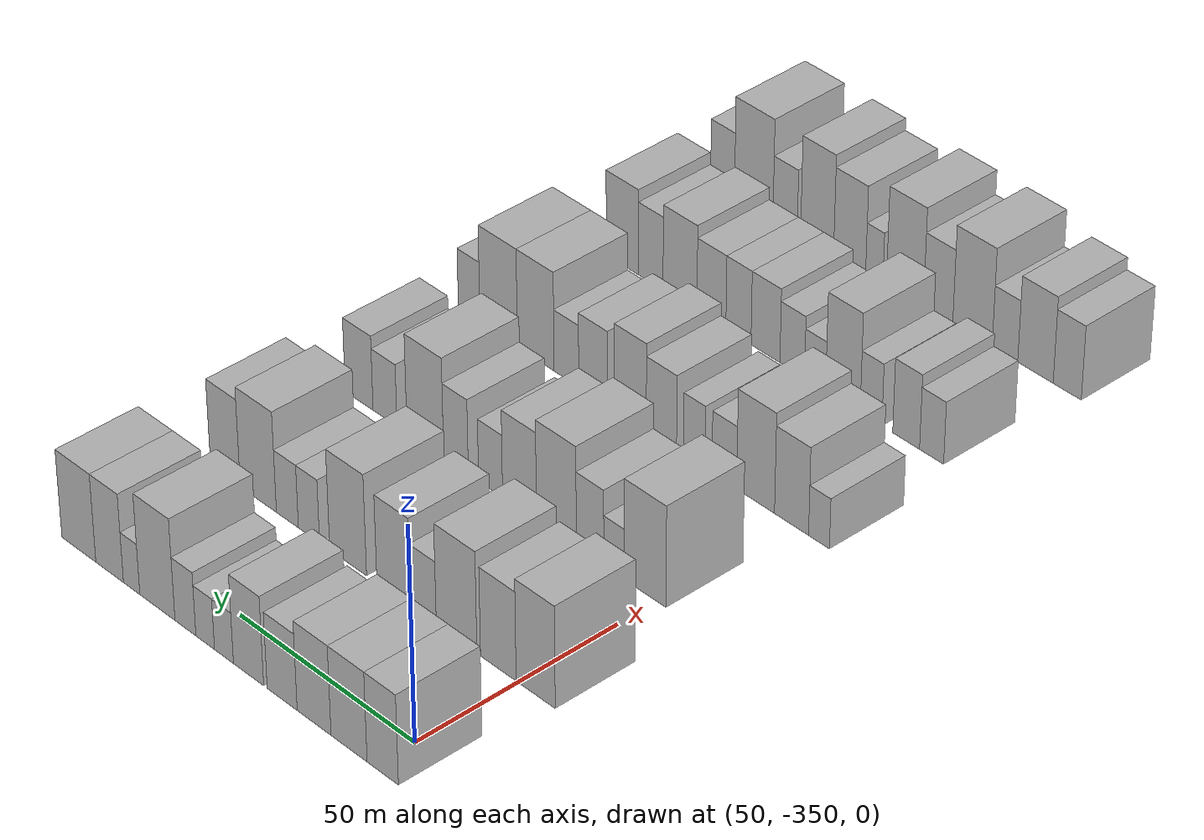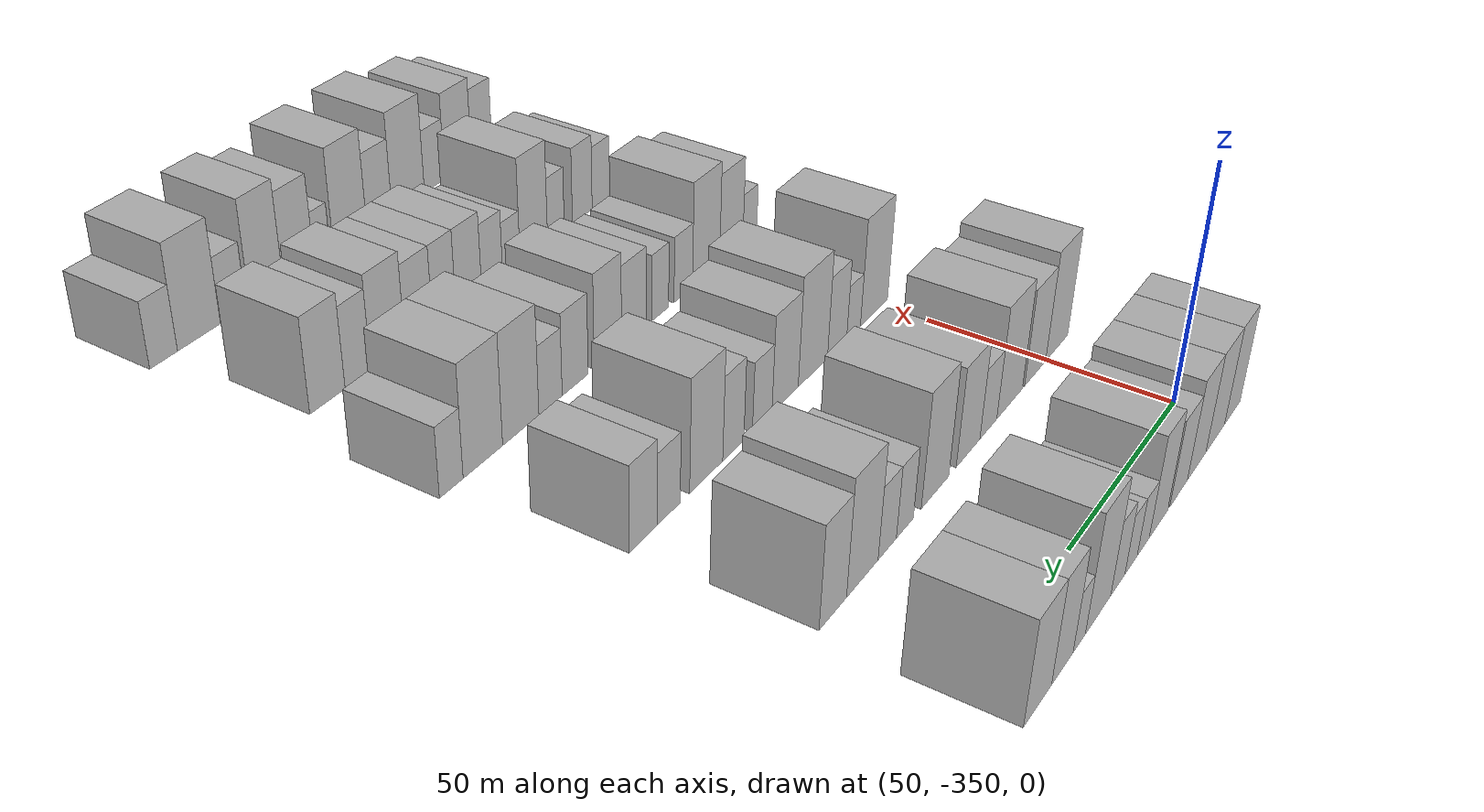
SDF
<sdf version="1.6">
 <world name="default">
  <model name="building_22">
   <static>1</static>
   <pose>50.0000 -352.5626 0 0.000000 0.000000 0.000000</pose>
   <link name="link">
    <pose>0 0 10.50 0 0 0</pose>
    <collision name="collision"><geometry><box><size>20.0000 8.6644 21.0000</size></box></geometry></collision>
    <visual name="visual">
     <cast_shadows>0</cast_shadows>
     <geometry><box><size>20.0000 8.6644 21.0000</size></box></geometry>
     <material>
      <script>
       <uri>model://HANNAS_wall/materials/scripts</uri>
       <uri>model://HANNAS_wall/materials/textures</uri>
       <name>vrc/HANNAS_wall</name>
      </script>
     </material>
    </visual>
   </link>
  </model>
  <model name="building_23">
   <static>1</static>
   <pose>50.0000 -343.1908 0 0.000000 0.000000 0.000000</pose>
   <link name="link">
    <pose>0 0 10.50 0 0 0</pose>
    <collision name="collision"><geometry><box><size>20.0000 10.0792 21.0000</size></box></geometry></collision>
    <visual name="visual">
     <cast_shadows>0</cast_shadows>
     <geometry><box><size>20.0000 10.0792 21.0000</size></box></geometry>
     <material>
      <script>
       <uri>model://HANNAS_wall/materials/scripts</uri>
       <uri>model://HANNAS_wall/materials/textures</uri>
       <name>vrc/HANNAS_wall</name>
      </script>
     </material>
    </visual>
   </link>
  </model>
  <model name="building_24">
   <static>1</static>
   <pose>50.0000 -333.3636 0 0.000000 0.000000 0.000000</pose>
   <link name="link">
    <pose>0 0 10.50 0 0 0</pose>
    <collision name="collision"><geometry><box><size>20.0000 9.5752 21.0000</size></box></geometry></collision>
    <visual name="visual">
     <cast_shadows>0</cast_shadows>
     <geometry><box><size>20.0000 9.5752 21.0000</size></box></geometry>
     <material>
      <script>
       <uri>model://HANNAS_wall/materials/scripts</uri>
       <uri>model://HANNAS_wall/materials/textures</uri>
       <name>vrc/HANNAS_wall</name>
      </script>
     </material>
    </visual>
   </link>
  </model>
  <model name="building_25">
   <static>1</static>
   <pose>50.0000 -324.2821 0 0.000000 0.000000 0.000000</pose>
   <link name="link">
    <pose>0 0 9.00 0 0 0</pose>
    <collision name="collision"><geometry><box><size>20.0000 8.5880 18.0000</size></box></geometry></collision>
    <visual name="visual">
     <cast_shadows>0</cast_shadows>
     <geometry><box><size>20.0000 8.5880 18.0000</size></box></geometry>
     <material>
      <script>
       <uri>model://HANNAS_wall/materials/scripts</uri>
       <uri>model://HANNAS_wall/materials/textures</uri>
       <name>vrc/HANNAS_wall</name>
      </script>
     </material>
    </visual>
   </link>
  </model>
  <model name="building_26">
   <static>1</static>
   <pose>50.0000 -314.6036 0 0.000000 0.000000 0.000000</pose>
   <link name="link">
    <pose>0 0 10.50 0 0 0</pose>
    <collision name="collision"><geometry><box><size>20.0000 8.7688 21.0000</size></box></geometry></collision>
    <visual name="visual">
     <cast_shadows>0</cast_shadows>
     <geometry><box><size>20.0000 8.7688 21.0000</size></box></geometry>
     <material>
      <script>
       <uri>model://HANNAS_wall/materials/scripts</uri>
       <uri>model://HANNAS_wall/materials/textures</uri>
       <name>vrc/HANNAS_wall</name>
      </script>
     </material>
    </visual>
   </link>
  </model>
  <model name="building_27">
   <static>1</static>
   <pose>50.0000 -307.4533 0 0.000000 0.000000 0.000000</pose>
   <link name="link">
    <pose>0 0 6.00 0 0 0</pose>
    <collision name="collision"><geometry><box><size>20.0000 5.5318 12.0000</size></box></geometry></collision>
    <visual name="visual">
     <cast_shadows>0</cast_shadows>
     <geometry><box><size>20.0000 5.5318 12.0000</size></box></geometry>
     <material>
      <script>
       <uri>model://HANNAS_wall/materials/scripts</uri>
       <uri>model://HANNAS_wall/materials/textures</uri>
       <name>vrc/HANNAS_wall</name>
      </script>
     </material>
    </visual>
   </link>
  </model>
  <model name="building_28">
   <static>1</static>
   <pose>50.0000 -301.9420 0 0.000000 0.000000 0.000000</pose>
   <link name="link">
    <pose>0 0 6.00 0 0 0</pose>
    <collision name="collision"><geometry><box><size>20.0000 5.4909 12.0000</size></box></geometry></collision>
    <visual name="visual">
     <cast_shadows>0</cast_shadows>
     <geometry><box><size>20.0000 5.4909 12.0000</size></box></geometry>
     <material>
      <script>
       <uri>model://HANNAS_wall/materials/scripts</uri>
       <uri>model://HANNAS_wall/materials/textures</uri>
       <name>vrc/HANNAS_wall</name>
      </script>
     </material>
    </visual>
   </link>
  </model>
  <model name="building_29">
   <static>1</static>
   <pose>50.0000 -296.1040 0 0.000000 0.000000 0.000000</pose>
   <link name="link">
    <pose>0 0 7.50 0 0 0</pose>
    <collision name="collision"><geometry><box><size>20.0000 6.1851 15.0000</size></box></geometry></collision>
    <visual name="visual">
     <cast_shadows>0</cast_shadows>
     <geometry><box><size>20.0000 6.1851 15.0000</size></box></geometry>
     <material>
      <script>
       <uri>model://HANNAS_wall/materials/scripts</uri>
       <uri>model://HANNAS_wall/materials/textures</uri>
       <name>vrc/HANNAS_wall</name>
      </script>
     </material>
    </visual>
   </link>
  </model>
  <model name="building_30">
   <static>1</static>
   <pose>50.0000 -287.7422 0 0.000000 0.000000 0.000000</pose>
   <link name="link">
    <pose>0 0 12.00 0 0 0</pose>
    <collision name="collision"><geometry><box><size>20.0000 10.5384 24.0000</size></box></geometry></collision>
    <visual name="visual">
     <cast_shadows>0</cast_shadows>
     <geometry><box><size>20.0000 10.5384 24.0000</size></box></geometry>
     <material>
      <script>
       <uri>model://HANNAS_wall/materials/scripts</uri>
       <uri>model://HANNAS_wall/materials/textures</uri>
       <name>vrc/HANNAS_wall</name>
      </script>
     </material>
    </visual>
   </link>
  </model>
  <model name="building_31">
   <static>1</static>
   <pose>50.0000 -280.0012 0 0.000000 0.000000 0.000000</pose>
   <link name="link">
    <pose>0 0 6.00 0 0 0</pose>
    <collision name="collision"><geometry><box><size>20.0000 4.9436 12.0000</size></box></geometry></collision>
    <visual name="visual">
     <cast_shadows>0</cast_shadows>
     <geometry><box><size>20.0000 4.9436 12.0000</size></box></geometry>
     <material>
      <script>
       <uri>model://HANNAS_wall/materials/scripts</uri>
       <uri>model://HANNAS_wall/materials/textures</uri>
       <name>vrc/HANNAS_wall</name>
      </script>
     </material>
    </visual>
   </link>
  </model>
  <model name="building_32">
   <static>1</static>
   <pose>50.0000 -273.3177 0 0.000000 0.000000 0.000000</pose>
   <link name="link">
    <pose>0 0 10.50 0 0 0</pose>
    <collision name="collision"><geometry><box><size>20.0000 8.4234 21.0000</size></box></geometry></collision>
    <visual name="visual">
     <cast_shadows>0</cast_shadows>
     <geometry><box><size>20.0000 8.4234 21.0000</size></box></geometry>
     <material>
      <script>
       <uri>model://HANNAS_wall/materials/scripts</uri>
       <uri>model://HANNAS_wall/materials/textures</uri>
       <name>vrc/HANNAS_wall</name>
      </script>
     </material>
    </visual>
   </link>
  </model>
  <model name="building_33">
   <static>1</static>
   <pose>50.0000 -263.8899 0 0.000000 0.000000 0.000000</pose>
   <link name="link">
    <pose>0 0 10.50 0 0 0</pose>
    <collision name="collision"><geometry><box><size>20.0000 10.4322 21.0000</size></box></geometry></collision>
    <visual name="visual">
     <cast_shadows>0</cast_shadows>
     <geometry><box><size>20.0000 10.4322 21.0000</size></box></geometry>
     <material>
      <script>
       <uri>model://HANNAS_wall/materials/scripts</uri>
       <uri>model://HANNAS_wall/materials/textures</uri>
       <name>vrc/HANNAS_wall</name>
      </script>
     </material>
    </visual>
   </link>
  </model>
  <model name="building_157">
   <static>1</static>
   <pose>85.0000 -354.8199 0 0.000000 0.000000 0.000000</pose>
   <link name="link">
    <pose>0 0 12.00 0 0 0</pose>
    <collision name="collision"><geometry><box><size>20.0000 10.7220 24.0000</size></box></geometry></collision>
    <visual name="visual">
     <cast_shadows>0</cast_shadows>
     <geometry><box><size>20.0000 10.7220 24.0000</size></box></geometry>
     <material>
      <script>
       <uri>model://HANNAS_wall/materials/scripts</uri>
       <uri>model://HANNAS_wall/materials/textures</uri>
       <name>vrc/HANNAS_wall</name>
      </script>
     </material>
    </visual>
   </link>
  </model>
  <model name="building_158">
   <static>1</static>
   <pose>85.0000 -344.5170 0 0.000000 0.000000 0.000000</pose>
   <link name="link">
    <pose>0 0 10.50 0 0 0</pose>
    <collision name="collision"><geometry><box><size>20.0000 9.8838 21.0000</size></box></geometry></collision>
    <visual name="visual">
     <cast_shadows>0</cast_shadows>
     <geometry><box><size>20.0000 9.8838 21.0000</size></box></geometry>
     <material>
      <script>
       <uri>model://HANNAS_wall/materials/scripts</uri>
       <uri>model://HANNAS_wall/materials/textures</uri>
       <name>vrc/HANNAS_wall</name>
      </script>
     </material>
    </visual>
   </link>
  </model>
  <model name="building_159">
   <static>1</static>
   <pose>85.0000 -332.8513 0 0.000000 0.000000 0.000000</pose>
   <link name="link">
    <pose>0 0 12.00 0 0 0</pose>
    <collision name="collision"><geometry><box><size>20.0000 11.4477 24.0000</size></box></geometry></collision>
    <visual name="visual">
     <cast_shadows>0</cast_shadows>
     <geometry><box><size>20.0000 11.4477 24.0000</size></box></geometry>
     <material>
      <script>
       <uri>model://HANNAS_wall/materials/scripts</uri>
       <uri>model://HANNAS_wall/materials/textures</uri>
       <name>vrc/HANNAS_wall</name>
      </script>
     </material>
    </visual>
   </link>
  </model>
  <model name="building_160">
   <static>1</static>
   <pose>85.0000 -323.4983 0 0.000000 0.000000 0.000000</pose>
   <link name="link">
    <pose>0 0 7.50 0 0 0</pose>
    <collision name="collision"><geometry><box><size>20.0000 7.2583 15.0000</size></box></geometry></collision>
    <visual name="visual">
     <cast_shadows>0</cast_shadows>
     <geometry><box><size>20.0000 7.2583 15.0000</size></box></geometry>
     <material>
      <script>
       <uri>model://HANNAS_wall/materials/scripts</uri>
       <uri>model://HANNAS_wall/materials/textures</uri>
       <name>vrc/HANNAS_wall</name>
      </script>
     </material>
    </visual>
   </link>
  </model>
  <model name="building_161">
   <static>1</static>
   <pose>85.0000 -314.9793 0 0.000000 0.000000 0.000000</pose>
   <link name="link">
    <pose>0 0 10.50 0 0 0</pose>
    <collision name="collision"><geometry><box><size>20.0000 9.7797 21.0000</size></box></geometry></collision>
    <visual name="visual">
     <cast_shadows>0</cast_shadows>
     <geometry><box><size>20.0000 9.7797 21.0000</size></box></geometry>
     <material>
      <script>
       <uri>model://HANNAS_wall/materials/scripts</uri>
       <uri>model://HANNAS_wall/materials/textures</uri>
       <name>vrc/HANNAS_wall</name>
      </script>
     </material>
    </visual>
   </link>
  </model>
  <model name="building_162">
   <static>1</static>
   <pose>85.0000 -301.7005 0 0.000000 0.000000 0.000000</pose>
   <link name="link">
    <pose>0 0 12.00 0 0 0</pose>
    <collision name="collision"><geometry><box><size>20.0000 10.7778 24.0000</size></box></geometry></collision>
    <visual name="visual">
     <cast_shadows>0</cast_shadows>
     <geometry><box><size>20.0000 10.7778 24.0000</size></box></geometry>
     <material>
      <script>
       <uri>model://HANNAS_wall/materials/scripts</uri>
       <uri>model://HANNAS_wall/materials/textures</uri>
       <name>vrc/HANNAS_wall</name>
      </script>
     </material>
    </visual>
   </link>
  </model>
  <model name="building_163">
   <static>1</static>
   <pose>85.0000 -290.1721 0 0.000000 0.000000 0.000000</pose>
   <link name="link">
    <pose>0 0 7.50 0 0 0</pose>
    <collision name="collision"><geometry><box><size>20.0000 6.2791 15.0000</size></box></geometry></collision>
    <visual name="visual">
     <cast_shadows>0</cast_shadows>
     <geometry><box><size>20.0000 6.2791 15.0000</size></box></geometry>
     <material>
      <script>
       <uri>model://HANNAS_wall/materials/scripts</uri>
       <uri>model://HANNAS_wall/materials/textures</uri>
       <name>vrc/HANNAS_wall</name>
      </script>
     </material>
    </visual>
   </link>
  </model>
  <model name="building_164">
   <static>1</static>
   <pose>85.0000 -283.7455 0 0.000000 0.000000 0.000000</pose>
   <link name="link">
    <pose>0 0 7.50 0 0 0</pose>
    <collision name="collision"><geometry><box><size>20.0000 6.5740 15.0000</size></box></geometry></collision>
    <visual name="visual">
     <cast_shadows>0</cast_shadows>
     <geometry><box><size>20.0000 6.5740 15.0000</size></box></geometry>
     <material>
      <script>
       <uri>model://HANNAS_wall/materials/scripts</uri>
       <uri>model://HANNAS_wall/materials/textures</uri>
       <name>vrc/HANNAS_wall</name>
      </script>
     </material>
    </visual>
   </link>
  </model>
  <model name="building_165">
   <static>1</static>
   <pose>85.0000 -274.9984 0 0.000000 0.000000 0.000000</pose>
   <link name="link">
    <pose>0 0 12.00 0 0 0</pose>
    <collision name="collision"><geometry><box><size>20.0000 10.9202 24.0000</size></box></geometry></collision>
    <visual name="visual">
     <cast_shadows>0</cast_shadows>
     <geometry><box><size>20.0000 10.9202 24.0000</size></box></geometry>
     <material>
      <script>
       <uri>model://HANNAS_wall/materials/scripts</uri>
       <uri>model://HANNAS_wall/materials/textures</uri>
       <name>vrc/HANNAS_wall</name>
      </script>
     </material>
    </visual>
   </link>
  </model>
  <model name="building_166">
   <static>1</static>
   <pose>85.0000 -265.0072 0 0.000000 0.000000 0.000000</pose>
   <link name="link">
    <pose>0 0 10.50 0 0 0</pose>
    <collision name="collision"><geometry><box><size>20.0000 9.0621 21.0000</size></box></geometry></collision>
    <visual name="visual">
     <cast_shadows>0</cast_shadows>
     <geometry><box><size>20.0000 9.0621 21.0000</size></box></geometry>
     <material>
      <script>
       <uri>model://HANNAS_wall/materials/scripts</uri>
       <uri>model://HANNAS_wall/materials/textures</uri>
       <name>vrc/HANNAS_wall</name>
      </script>
     </material>
    </visual>
   </link>
  </model>
  <model name="building_276">
   <static>1</static>
   <pose>120.0000 -346.6908 0 0.000000 0.000000 0.000000</pose>
   <link name="link">
    <pose>0 0 12.00 0 0 0</pose>
    <collision name="collision"><geometry><box><size>20.0000 11.5114 24.0000</size></box></geometry></collision>
    <visual name="visual">
     <cast_shadows>0</cast_shadows>
     <geometry><box><size>20.0000 11.5114 24.0000</size></box></geometry>
     <material>
      <script>
       <uri>model://HANNAS_wall/materials/scripts</uri>
       <uri>model://HANNAS_wall/materials/textures</uri>
       <name>vrc/HANNAS_wall</name>
      </script>
     </material>
    </visual>
   </link>
  </model>
  <model name="building_277">
   <static>1</static>
   <pose>120.0000 -338.0852 0 0.000000 0.000000 0.000000</pose>
   <link name="link">
    <pose>0 0 6.00 0 0 0</pose>
    <collision name="collision"><geometry><box><size>20.0000 5.6998 12.0000</size></box></geometry></collision>
    <visual name="visual">
     <cast_shadows>0</cast_shadows>
     <geometry><box><size>20.0000 5.6998 12.0000</size></box></geometry>
     <material>
      <script>
       <uri>model://HANNAS_wall/materials/scripts</uri>
       <uri>model://HANNAS_wall/materials/textures</uri>
       <name>vrc/HANNAS_wall</name>
      </script>
     </material>
    </visual>
   </link>
  </model>
  <model name="building_278">
   <static>1</static>
   <pose>120.0000 -331.3809 0 0.000000 0.000000 0.000000</pose>
   <link name="link">
    <pose>0 0 9.00 0 0 0</pose>
    <collision name="collision"><geometry><box><size>20.0000 7.7088 18.0000</size></box></geometry></collision>
    <visual name="visual">
     <cast_shadows>0</cast_shadows>
     <geometry><box><size>20.0000 7.7088 18.0000</size></box></geometry>
     <material>
      <script>
       <uri>model://HANNAS_wall/materials/scripts</uri>
       <uri>model://HANNAS_wall/materials/textures</uri>
       <name>vrc/HANNAS_wall</name>
      </script>
     </material>
    </visual>
   </link>
  </model>
  <model name="building_279">
   <static>1</static>
   <pose>120.0000 -321.8666 0 0.000000 0.000000 0.000000</pose>
   <link name="link">
    <pose>0 0 12.00 0 0 0</pose>
    <collision name="collision"><geometry><box><size>20.0000 11.3198 24.0000</size></box></geometry></collision>
    <visual name="visual">
     <cast_shadows>0</cast_shadows>
     <geometry><box><size>20.0000 11.3198 24.0000</size></box></geometry>
     <material>
      <script>
       <uri>model://HANNAS_wall/materials/scripts</uri>
       <uri>model://HANNAS_wall/materials/textures</uri>
       <name>vrc/HANNAS_wall</name>
      </script>
     </material>
    </visual>
   </link>
  </model>
  <model name="building_280">
   <static>1</static>
   <pose>120.0000 -311.3226 0 0.000000 0.000000 0.000000</pose>
   <link name="link">
    <pose>0 0 10.50 0 0 0</pose>
    <collision name="collision"><geometry><box><size>20.0000 9.7681 21.0000</size></box></geometry></collision>
    <visual name="visual">
     <cast_shadows>0</cast_shadows>
     <geometry><box><size>20.0000 9.7681 21.0000</size></box></geometry>
     <material>
      <script>
       <uri>model://HANNAS_wall/materials/scripts</uri>
       <uri>model://HANNAS_wall/materials/textures</uri>
       <name>vrc/HANNAS_wall</name>
      </script>
     </material>
    </visual>
   </link>
  </model>
  <model name="building_281">
   <static>1</static>
   <pose>120.0000 -302.9514 0 0.000000 0.000000 0.000000</pose>
   <link name="link">
    <pose>0 0 7.50 0 0 0</pose>
    <collision name="collision"><geometry><box><size>20.0000 6.9742 15.0000</size></box></geometry></collision>
    <visual name="visual">
     <cast_shadows>0</cast_shadows>
     <geometry><box><size>20.0000 6.9742 15.0000</size></box></geometry>
     <material>
      <script>
       <uri>model://HANNAS_wall/materials/scripts</uri>
       <uri>model://HANNAS_wall/materials/textures</uri>
       <name>vrc/HANNAS_wall</name>
      </script>
     </material>
    </visual>
   </link>
  </model>
  <model name="building_282">
   <static>1</static>
   <pose>120.0000 -292.8397 0 0.000000 0.000000 0.000000</pose>
   <link name="link">
    <pose>0 0 9.00 0 0 0</pose>
    <collision name="collision"><geometry><box><size>20.0000 7.2493 18.0000</size></box></geometry></collision>
    <visual name="visual">
     <cast_shadows>0</cast_shadows>
     <geometry><box><size>20.0000 7.2493 18.0000</size></box></geometry>
     <material>
      <script>
       <uri>model://HANNAS_wall/materials/scripts</uri>
       <uri>model://HANNAS_wall/materials/textures</uri>
       <name>vrc/HANNAS_wall</name>
      </script>
     </material>
    </visual>
   </link>
  </model>
  <model name="building_283">
   <static>1</static>
   <pose>120.0000 -283.7536 0 0.000000 0.000000 0.000000</pose>
   <link name="link">
    <pose>0 0 12.00 0 0 0</pose>
    <collision name="collision"><geometry><box><size>20.0000 10.9228 24.0000</size></box></geometry></collision>
    <visual name="visual">
     <cast_shadows>0</cast_shadows>
     <geometry><box><size>20.0000 10.9228 24.0000</size></box></geometry>
     <material>
      <script>
       <uri>model://HANNAS_wall/materials/scripts</uri>
       <uri>model://HANNAS_wall/materials/textures</uri>
       <name>vrc/HANNAS_wall</name>
      </script>
     </material>
    </visual>
   </link>
  </model>
  <model name="building_284">
   <static>1</static>
   <pose>120.0000 -271.6797 0 0.000000 0.000000 0.000000</pose>
   <link name="link">
    <pose>0 0 7.50 0 0 0</pose>
    <collision name="collision"><geometry><box><size>20.0000 7.2249 15.0000</size></box></geometry></collision>
    <visual name="visual">
     <cast_shadows>0</cast_shadows>
     <geometry><box><size>20.0000 7.2249 15.0000</size></box></geometry>
     <material>
      <script>
       <uri>model://HANNAS_wall/materials/scripts</uri>
       <uri>model://HANNAS_wall/materials/textures</uri>
       <name>vrc/HANNAS_wall</name>
      </script>
     </material>
    </visual>
   </link>
  </model>
  <model name="building_285">
   <static>1</static>
   <pose>120.0000 -263.8373 0 0.000000 0.000000 0.000000</pose>
   <link name="link">
    <pose>0 0 9.00 0 0 0</pose>
    <collision name="collision"><geometry><box><size>20.0000 8.4598 18.0000</size></box></geometry></collision>
    <visual name="visual">
     <cast_shadows>0</cast_shadows>
     <geometry><box><size>20.0000 8.4598 18.0000</size></box></geometry>
     <material>
      <script>
       <uri>model://HANNAS_wall/materials/scripts</uri>
       <uri>model://HANNAS_wall/materials/textures</uri>
       <name>vrc/HANNAS_wall</name>
      </script>
     </material>
    </visual>
   </link>
  </model>
  <model name="building_405">
   <static>1</static>
   <pose>155.0000 -357.7529 0 0.000000 0.000000 0.000000</pose>
   <link name="link">
    <pose>0 0 6.00 0 0 0</pose>
    <collision name="collision"><geometry><box><size>20.0000 5.6784 12.0000</size></box></geometry></collision>
    <visual name="visual">
     <cast_shadows>0</cast_shadows>
     <geometry><box><size>20.0000 5.6784 12.0000</size></box></geometry>
     <material>
      <script>
       <uri>model://HANNAS_wall/materials/scripts</uri>
       <uri>model://HANNAS_wall/materials/textures</uri>
       <name>vrc/HANNAS_wall</name>
      </script>
     </material>
    </visual>
   </link>
  </model>
  <model name="building_406">
   <static>1</static>
   <pose>155.0000 -350.2532 0 0.000000 0.000000 0.000000</pose>
   <link name="link">
    <pose>0 0 10.50 0 0 0</pose>
    <collision name="collision"><geometry><box><size>20.0000 9.3210 21.0000</size></box></geometry></collision>
    <visual name="visual">
     <cast_shadows>0</cast_shadows>
     <geometry><box><size>20.0000 9.3210 21.0000</size></box></geometry>
     <material>
      <script>
       <uri>model://HANNAS_wall/materials/scripts</uri>
       <uri>model://HANNAS_wall/materials/textures</uri>
       <name>vrc/HANNAS_wall</name>
      </script>
     </material>
    </visual>
   </link>
  </model>
  <model name="building_407">
   <static>1</static>
   <pose>155.0000 -340.3426 0 0.000000 0.000000 0.000000</pose>
   <link name="link">
    <pose>0 0 12.00 0 0 0</pose>
    <collision name="collision"><geometry><box><size>20.0000 10.5003 24.0000</size></box></geometry></collision>
    <visual name="visual">
     <cast_shadows>0</cast_shadows>
     <geometry><box><size>20.0000 10.5003 24.0000</size></box></geometry>
     <material>
      <script>
       <uri>model://HANNAS_wall/materials/scripts</uri>
       <uri>model://HANNAS_wall/materials/textures</uri>
       <name>vrc/HANNAS_wall</name>
      </script>
     </material>
    </visual>
   </link>
  </model>
  <model name="building_408">
   <static>1</static>
   <pose>155.0000 -331.6388 0 0.000000 0.000000 0.000000</pose>
   <link name="link">
    <pose>0 0 7.50 0 0 0</pose>
    <collision name="collision"><geometry><box><size>20.0000 6.9074 15.0000</size></box></geometry></collision>
    <visual name="visual">
     <cast_shadows>0</cast_shadows>
     <geometry><box><size>20.0000 6.9074 15.0000</size></box></geometry>
     <material>
      <script>
       <uri>model://HANNAS_wall/materials/scripts</uri>
       <uri>model://HANNAS_wall/materials/textures</uri>
       <name>vrc/HANNAS_wall</name>
      </script>
     </material>
    </visual>
   </link>
  </model>
  <model name="building_409">
   <static>1</static>
   <pose>155.0000 -323.1669 0 0.000000 0.000000 0.000000</pose>
   <link name="link">
    <pose>0 0 7.50 0 0 0</pose>
    <collision name="collision"><geometry><box><size>20.0000 6.0364 15.0000</size></box></geometry></collision>
    <visual name="visual">
     <cast_shadows>0</cast_shadows>
     <geometry><box><size>20.0000 6.0364 15.0000</size></box></geometry>
     <material>
      <script>
       <uri>model://HANNAS_wall/materials/scripts</uri>
       <uri>model://HANNAS_wall/materials/textures</uri>
       <name>vrc/HANNAS_wall</name>
      </script>
     </material>
    </visual>
   </link>
  </model>
  <model name="building_410">
   <static>1</static>
   <pose>155.0000 -313.8187 0 0.000000 0.000000 0.000000</pose>
   <link name="link">
    <pose>0 0 9.00 0 0 0</pose>
    <collision name="collision"><geometry><box><size>20.0000 8.6600 18.0000</size></box></geometry></collision>
    <visual name="visual">
     <cast_shadows>0</cast_shadows>
     <geometry><box><size>20.0000 8.6600 18.0000</size></box></geometry>
     <material>
      <script>
       <uri>model://HANNAS_wall/materials/scripts</uri>
       <uri>model://HANNAS_wall/materials/textures</uri>
       <name>vrc/HANNAS_wall</name>
      </script>
     </material>
    </visual>
   </link>
  </model>
  <model name="building_411">
   <static>1</static>
   <pose>155.0000 -304.8774 0 0.000000 0.000000 0.000000</pose>
   <link name="link">
    <pose>0 0 10.50 0 0 0</pose>
    <collision name="collision"><geometry><box><size>20.0000 9.2226 21.0000</size></box></geometry></collision>
    <visual name="visual">
     <cast_shadows>0</cast_shadows>
     <geometry><box><size>20.0000 9.2226 21.0000</size></box></geometry>
     <material>
      <script>
       <uri>model://HANNAS_wall/materials/scripts</uri>
       <uri>model://HANNAS_wall/materials/textures</uri>
       <name>vrc/HANNAS_wall</name>
      </script>
     </material>
    </visual>
   </link>
  </model>
  <model name="building_412">
   <static>1</static>
   <pose>155.0000 -294.0614 0 0.000000 0.000000 0.000000</pose>
   <link name="link">
    <pose>0 0 9.00 0 0 0</pose>
    <collision name="collision"><geometry><box><size>20.0000 8.4094 18.0000</size></box></geometry></collision>
    <visual name="visual">
     <cast_shadows>0</cast_shadows>
     <geometry><box><size>20.0000 8.4094 18.0000</size></box></geometry>
     <material>
      <script>
       <uri>model://HANNAS_wall/materials/scripts</uri>
       <uri>model://HANNAS_wall/materials/textures</uri>
       <name>vrc/HANNAS_wall</name>
      </script>
     </material>
    </visual>
   </link>
  </model>
  <model name="building_413">
   <static>1</static>
   <pose>155.0000 -286.2092 0 0.000000 0.000000 0.000000</pose>
   <link name="link">
    <pose>0 0 7.50 0 0 0</pose>
    <collision name="collision"><geometry><box><size>20.0000 7.2950 15.0000</size></box></geometry></collision>
    <visual name="visual">
     <cast_shadows>0</cast_shadows>
     <geometry><box><size>20.0000 7.2950 15.0000</size></box></geometry>
     <material>
      <script>
       <uri>model://HANNAS_wall/materials/scripts</uri>
       <uri>model://HANNAS_wall/materials/textures</uri>
       <name>vrc/HANNAS_wall</name>
      </script>
     </material>
    </visual>
   </link>
  </model>
  <model name="building_414">
   <static>1</static>
   <pose>155.0000 -277.0945 0 0.000000 0.000000 0.000000</pose>
   <link name="link">
    <pose>0 0 12.00 0 0 0</pose>
    <collision name="collision"><geometry><box><size>20.0000 10.9344 24.0000</size></box></geometry></collision>
    <visual name="visual">
     <cast_shadows>0</cast_shadows>
     <geometry><box><size>20.0000 10.9344 24.0000</size></box></geometry>
     <material>
      <script>
       <uri>model://HANNAS_wall/materials/scripts</uri>
       <uri>model://HANNAS_wall/materials/textures</uri>
       <name>vrc/HANNAS_wall</name>
      </script>
     </material>
    </visual>
   </link>
  </model>
  <model name="building_415">
   <static>1</static>
   <pose>155.0000 -265.9633 0 0.000000 0.000000 0.000000</pose>
   <link name="link">
    <pose>0 0 12.00 0 0 0</pose>
    <collision name="collision"><geometry><box><size>20.0000 11.3281 24.0000</size></box></geometry></collision>
    <visual name="visual">
     <cast_shadows>0</cast_shadows>
     <geometry><box><size>20.0000 11.3281 24.0000</size></box></geometry>
     <material>
      <script>
       <uri>model://HANNAS_wall/materials/scripts</uri>
       <uri>model://HANNAS_wall/materials/textures</uri>
       <name>vrc/HANNAS_wall</name>
      </script>
     </material>
    </visual>
   </link>
  </model>
  <model name="building_416">
   <static>1</static>
   <pose>155.0000 -257.0076 0 0.000000 0.000000 0.000000</pose>
   <link name="link">
    <pose>0 0 7.50 0 0 0</pose>
    <collision name="collision"><geometry><box><size>20.0000 6.5833 15.0000</size></box></geometry></collision>
    <visual name="visual">
     <cast_shadows>0</cast_shadows>
     <geometry><box><size>20.0000 6.5833 15.0000</size></box></geometry>
     <material>
      <script>
       <uri>model://HANNAS_wall/materials/scripts</uri>
       <uri>model://HANNAS_wall/materials/textures</uri>
       <name>vrc/HANNAS_wall</name>
      </script>
     </material>
    </visual>
   </link>
  </model>
  <model name="building_538">
   <static>1</static>
   <pose>190.0000 -353.4300 0 0.000000 0.000000 0.000000</pose>
   <link name="link">
    <pose>0 0 7.50 0 0 0</pose>
    <collision name="collision"><geometry><box><size>20.0000 6.5559 15.0000</size></box></geometry></collision>
    <visual name="visual">
     <cast_shadows>0</cast_shadows>
     <geometry><box><size>20.0000 6.5559 15.0000</size></box></geometry>
     <material>
      <script>
       <uri>model://HANNAS_wall/materials/scripts</uri>
       <uri>model://HANNAS_wall/materials/textures</uri>
       <name>vrc/HANNAS_wall</name>
      </script>
     </material>
    </visual>
   </link>
  </model>
  <model name="building_539">
   <static>1</static>
   <pose>190.0000 -346.4655 0 0.000000 0.000000 0.000000</pose>
   <link name="link">
    <pose>0 0 9.00 0 0 0</pose>
    <collision name="collision"><geometry><box><size>20.0000 7.3732 18.0000</size></box></geometry></collision>
    <visual name="visual">
     <cast_shadows>0</cast_shadows>
     <geometry><box><size>20.0000 7.3732 18.0000</size></box></geometry>
     <material>
      <script>
       <uri>model://HANNAS_wall/materials/scripts</uri>
       <uri>model://HANNAS_wall/materials/textures</uri>
       <name>vrc/HANNAS_wall</name>
      </script>
     </material>
    </visual>
   </link>
  </model>
  <model name="building_540">
   <static>1</static>
   <pose>190.0000 -336.7587 0 0.000000 0.000000 0.000000</pose>
   <link name="link">
    <pose>0 0 7.50 0 0 0</pose>
    <collision name="collision"><geometry><box><size>20.0000 6.0404 15.0000</size></box></geometry></collision>
    <visual name="visual">
     <cast_shadows>0</cast_shadows>
     <geometry><box><size>20.0000 6.0404 15.0000</size></box></geometry>
     <material>
      <script>
       <uri>model://HANNAS_wall/materials/scripts</uri>
       <uri>model://HANNAS_wall/materials/textures</uri>
       <name>vrc/HANNAS_wall</name>
      </script>
     </material>
    </visual>
   </link>
  </model>
  <model name="building_541">
   <static>1</static>
   <pose>190.0000 -328.8917 0 0.000000 0.000000 0.000000</pose>
   <link name="link">
    <pose>0 0 12.00 0 0 0</pose>
    <collision name="collision"><geometry><box><size>20.0000 9.6937 24.0000</size></box></geometry></collision>
    <visual name="visual">
     <cast_shadows>0</cast_shadows>
     <geometry><box><size>20.0000 9.6937 24.0000</size></box></geometry>
     <material>
      <script>
       <uri>model://HANNAS_wall/materials/scripts</uri>
       <uri>model://HANNAS_wall/materials/textures</uri>
       <name>vrc/HANNAS_wall</name>
      </script>
     </material>
    </visual>
   </link>
  </model>
  <model name="building_542">
   <static>1</static>
   <pose>190.0000 -321.0667 0 0.000000 0.000000 0.000000</pose>
   <link name="link">
    <pose>0 0 6.00 0 0 0</pose>
    <collision name="collision"><geometry><box><size>20.0000 5.9564 12.0000</size></box></geometry></collision>
    <visual name="visual">
     <cast_shadows>0</cast_shadows>
     <geometry><box><size>20.0000 5.9564 12.0000</size></box></geometry>
     <material>
      <script>
       <uri>model://HANNAS_wall/materials/scripts</uri>
       <uri>model://HANNAS_wall/materials/textures</uri>
       <name>vrc/HANNAS_wall</name>
      </script>
     </material>
    </visual>
   </link>
  </model>
  <model name="building_543">
   <static>1</static>
   <pose>190.0000 -314.5782 0 0.000000 0.000000 0.000000</pose>
   <link name="link">
    <pose>0 0 7.50 0 0 0</pose>
    <collision name="collision"><geometry><box><size>20.0000 7.0206 15.0000</size></box></geometry></collision>
    <visual name="visual">
     <cast_shadows>0</cast_shadows>
     <geometry><box><size>20.0000 7.0206 15.0000</size></box></geometry>
     <material>
      <script>
       <uri>model://HANNAS_wall/materials/scripts</uri>
       <uri>model://HANNAS_wall/materials/textures</uri>
       <name>vrc/HANNAS_wall</name>
      </script>
     </material>
    </visual>
   </link>
  </model>
  <model name="building_544">
   <static>1</static>
   <pose>190.0000 -306.9032 0 0.000000 0.000000 0.000000</pose>
   <link name="link">
    <pose>0 0 9.00 0 0 0</pose>
    <collision name="collision"><geometry><box><size>20.0000 8.3295 18.0000</size></box></geometry></collision>
    <visual name="visual">
     <cast_shadows>0</cast_shadows>
     <geometry><box><size>20.0000 8.3295 18.0000</size></box></geometry>
     <material>
      <script>
       <uri>model://HANNAS_wall/materials/scripts</uri>
       <uri>model://HANNAS_wall/materials/textures</uri>
       <name>vrc/HANNAS_wall</name>
      </script>
     </material>
    </visual>
   </link>
  </model>
  <model name="building_545">
   <static>1</static>
   <pose>190.0000 -299.0948 0 0.000000 0.000000 0.000000</pose>
   <link name="link">
    <pose>0 0 9.00 0 0 0</pose>
    <collision name="collision"><geometry><box><size>20.0000 7.2873 18.0000</size></box></geometry></collision>
    <visual name="visual">
     <cast_shadows>0</cast_shadows>
     <geometry><box><size>20.0000 7.2873 18.0000</size></box></geometry>
     <material>
      <script>
       <uri>model://HANNAS_wall/materials/scripts</uri>
       <uri>model://HANNAS_wall/materials/textures</uri>
       <name>vrc/HANNAS_wall</name>
      </script>
     </material>
    </visual>
   </link>
  </model>
  <model name="building_546">
   <static>1</static>
   <pose>190.0000 -291.2149 0 0.000000 0.000000 0.000000</pose>
   <link name="link">
    <pose>0 0 9.00 0 0 0</pose>
    <collision name="collision"><geometry><box><size>20.0000 8.4725 18.0000</size></box></geometry></collision>
    <visual name="visual">
     <cast_shadows>0</cast_shadows>
     <geometry><box><size>20.0000 8.4725 18.0000</size></box></geometry>
     <material>
      <script>
       <uri>model://HANNAS_wall/materials/scripts</uri>
       <uri>model://HANNAS_wall/materials/textures</uri>
       <name>vrc/HANNAS_wall</name>
      </script>
     </material>
    </visual>
   </link>
  </model>
  <model name="building_547">
   <static>1</static>
   <pose>190.0000 -281.9600 0 0.000000 0.000000 0.000000</pose>
   <link name="link">
    <pose>0 0 10.50 0 0 0</pose>
    <collision name="collision"><geometry><box><size>20.0000 10.0372 21.0000</size></box></geometry></collision>
    <visual name="visual">
     <cast_shadows>0</cast_shadows>
     <geometry><box><size>20.0000 10.0372 21.0000</size></box></geometry>
     <material>
      <script>
       <uri>model://HANNAS_wall/materials/scripts</uri>
       <uri>model://HANNAS_wall/materials/textures</uri>
       <name>vrc/HANNAS_wall</name>
      </script>
     </material>
    </visual>
   </link>
  </model>
  <model name="building_548">
   <static>1</static>
   <pose>190.0000 -273.2803 0 0.000000 0.000000 0.000000</pose>
   <link name="link">
    <pose>0 0 9.00 0 0 0</pose>
    <collision name="collision"><geometry><box><size>20.0000 7.3221 18.0000</size></box></geometry></collision>
    <visual name="visual">
     <cast_shadows>0</cast_shadows>
     <geometry><box><size>20.0000 7.3221 18.0000</size></box></geometry>
     <material>
      <script>
       <uri>model://HANNAS_wall/materials/scripts</uri>
       <uri>model://HANNAS_wall/materials/textures</uri>
       <name>vrc/HANNAS_wall</name>
      </script>
     </material>
    </visual>
   </link>
  </model>
  <model name="building_549">
   <static>1</static>
   <pose>190.0000 -264.7613 0 0.000000 0.000000 0.000000</pose>
   <link name="link">
    <pose>0 0 10.50 0 0 0</pose>
    <collision name="collision"><geometry><box><size>20.0000 9.7160 21.0000</size></box></geometry></collision>
    <visual name="visual">
     <cast_shadows>0</cast_shadows>
     <geometry><box><size>20.0000 9.7160 21.0000</size></box></geometry>
     <material>
      <script>
       <uri>model://HANNAS_wall/materials/scripts</uri>
       <uri>model://HANNAS_wall/materials/textures</uri>
       <name>vrc/HANNAS_wall</name>
      </script>
     </material>
    </visual>
   </link>
  </model>
  <model name="building_666">
   <static>1</static>
   <pose>225.0000 -356.6856 0 0.000000 0.000000 0.000000</pose>
   <link name="link">
    <pose>0 0 9.00 0 0 0</pose>
    <collision name="collision"><geometry><box><size>20.0000 7.6343 18.0000</size></box></geometry></collision>
    <visual name="visual">
     <cast_shadows>0</cast_shadows>
     <geometry><box><size>20.0000 7.6343 18.0000</size></box></geometry>
     <material>
      <script>
       <uri>model://HANNAS_wall/materials/scripts</uri>
       <uri>model://HANNAS_wall/materials/textures</uri>
       <name>vrc/HANNAS_wall</name>
      </script>
     </material>
    </visual>
   </link>
  </model>
  <model name="building_667">
   <static>1</static>
   <pose>225.0000 -348.0159 0 0.000000 0.000000 0.000000</pose>
   <link name="link">
    <pose>0 0 10.50 0 0 0</pose>
    <collision name="collision"><geometry><box><size>20.0000 9.7052 21.0000</size></box></geometry></collision>
    <visual name="visual">
     <cast_shadows>0</cast_shadows>
     <geometry><box><size>20.0000 9.7052 21.0000</size></box></geometry>
     <material>
      <script>
       <uri>model://HANNAS_wall/materials/scripts</uri>
       <uri>model://HANNAS_wall/materials/textures</uri>
       <name>vrc/HANNAS_wall</name>
      </script>
     </material>
    </visual>
   </link>
  </model>
  <model name="building_668">
   <static>1</static>
   <pose>225.0000 -339.6227 0 0.000000 0.000000 0.000000</pose>
   <link name="link">
    <pose>0 0 7.50 0 0 0</pose>
    <collision name="collision"><geometry><box><size>20.0000 7.0811 15.0000</size></box></geometry></collision>
    <visual name="visual">
     <cast_shadows>0</cast_shadows>
     <geometry><box><size>20.0000 7.0811 15.0000</size></box></geometry>
     <material>
      <script>
       <uri>model://HANNAS_wall/materials/scripts</uri>
       <uri>model://HANNAS_wall/materials/textures</uri>
       <name>vrc/HANNAS_wall</name>
      </script>
     </material>
    </visual>
   </link>
  </model>
  <model name="building_669">
   <static>1</static>
   <pose>225.0000 -330.5767 0 0.000000 0.000000 0.000000</pose>
   <link name="link">
    <pose>0 0 12.00 0 0 0</pose>
    <collision name="collision"><geometry><box><size>20.0000 11.0109 24.0000</size></box></geometry></collision>
    <visual name="visual">
     <cast_shadows>0</cast_shadows>
     <geometry><box><size>20.0000 11.0109 24.0000</size></box></geometry>
     <material>
      <script>
       <uri>model://HANNAS_wall/materials/scripts</uri>
       <uri>model://HANNAS_wall/materials/textures</uri>
       <name>vrc/HANNAS_wall</name>
      </script>
     </material>
    </visual>
   </link>
  </model>
  <model name="building_670">
   <static>1</static>
   <pose>225.0000 -320.9252 0 0.000000 0.000000 0.000000</pose>
   <link name="link">
    <pose>0 0 9.00 0 0 0</pose>
    <collision name="collision"><geometry><box><size>20.0000 8.2921 18.0000</size></box></geometry></collision>
    <visual name="visual">
     <cast_shadows>0</cast_shadows>
     <geometry><box><size>20.0000 8.2921 18.0000</size></box></geometry>
     <material>
      <script>
       <uri>model://HANNAS_wall/materials/scripts</uri>
       <uri>model://HANNAS_wall/materials/textures</uri>
       <name>vrc/HANNAS_wall</name>
      </script>
     </material>
    </visual>
   </link>
  </model>
  <model name="building_671">
   <static>1</static>
   <pose>225.0000 -311.4913 0 0.000000 0.000000 0.000000</pose>
   <link name="link">
    <pose>0 0 12.00 0 0 0</pose>
    <collision name="collision"><geometry><box><size>20.0000 10.5758 24.0000</size></box></geometry></collision>
    <visual name="visual">
     <cast_shadows>0</cast_shadows>
     <geometry><box><size>20.0000 10.5758 24.0000</size></box></geometry>
     <material>
      <script>
       <uri>model://HANNAS_wall/materials/scripts</uri>
       <uri>model://HANNAS_wall/materials/textures</uri>
       <name>vrc/HANNAS_wall</name>
      </script>
     </material>
    </visual>
   </link>
  </model>
  <model name="building_672">
   <static>1</static>
   <pose>225.0000 -302.7192 0 0.000000 0.000000 0.000000</pose>
   <link name="link">
    <pose>0 0 6.00 0 0 0</pose>
    <collision name="collision"><geometry><box><size>20.0000 4.9683 12.0000</size></box></geometry></collision>
    <visual name="visual">
     <cast_shadows>0</cast_shadows>
     <geometry><box><size>20.0000 4.9683 12.0000</size></box></geometry>
     <material>
      <script>
       <uri>model://HANNAS_wall/materials/scripts</uri>
       <uri>model://HANNAS_wall/materials/textures</uri>
       <name>vrc/HANNAS_wall</name>
      </script>
     </material>
    </visual>
   </link>
  </model>
  <model name="building_673">
   <static>1</static>
   <pose>225.0000 -295.5721 0 0.000000 0.000000 0.000000</pose>
   <link name="link">
    <pose>0 0 10.50 0 0 0</pose>
    <collision name="collision"><geometry><box><size>20.0000 9.3258 21.0000</size></box></geometry></collision>
    <visual name="visual">
     <cast_shadows>0</cast_shadows>
     <geometry><box><size>20.0000 9.3258 21.0000</size></box></geometry>
     <material>
      <script>
       <uri>model://HANNAS_wall/materials/scripts</uri>
       <uri>model://HANNAS_wall/materials/textures</uri>
       <name>vrc/HANNAS_wall</name>
      </script>
     </material>
    </visual>
   </link>
  </model>
  <model name="building_674">
   <static>1</static>
   <pose>225.0000 -286.0586 0 0.000000 0.000000 0.000000</pose>
   <link name="link">
    <pose>0 0 12.00 0 0 0</pose>
    <collision name="collision"><geometry><box><size>20.0000 9.7014 24.0000</size></box></geometry></collision>
    <visual name="visual">
     <cast_shadows>0</cast_shadows>
     <geometry><box><size>20.0000 9.7014 24.0000</size></box></geometry>
     <material>
      <script>
       <uri>model://HANNAS_wall/materials/scripts</uri>
       <uri>model://HANNAS_wall/materials/textures</uri>
       <name>vrc/HANNAS_wall</name>
      </script>
     </material>
    </visual>
   </link>
  </model>
  <model name="building_675">
   <static>1</static>
   <pose>225.0000 -276.6090 0 0.000000 0.000000 0.000000</pose>
   <link name="link">
    <pose>0 0 7.50 0 0 0</pose>
    <collision name="collision"><geometry><box><size>20.0000 7.1977 15.0000</size></box></geometry></collision>
    <visual name="visual">
     <cast_shadows>0</cast_shadows>
     <geometry><box><size>20.0000 7.1977 15.0000</size></box></geometry>
     <material>
      <script>
       <uri>model://HANNAS_wall/materials/scripts</uri>
       <uri>model://HANNAS_wall/materials/textures</uri>
       <name>vrc/HANNAS_wall</name>
      </script>
     </material>
    </visual>
   </link>
  </model>
  <model name="building_676">
   <static>1</static>
   <pose>225.0000 -267.2366 0 0.000000 0.000000 0.000000</pose>
   <link name="link">
    <pose>0 0 12.00 0 0 0</pose>
    <collision name="collision"><geometry><box><size>20.0000 11.5471 24.0000</size></box></geometry></collision>
    <visual name="visual">
     <cast_shadows>0</cast_shadows>
     <geometry><box><size>20.0000 11.5471 24.0000</size></box></geometry>
     <material>
      <script>
       <uri>model://HANNAS_wall/materials/scripts</uri>
       <uri>model://HANNAS_wall/materials/textures</uri>
       <name>vrc/HANNAS_wall</name>
      </script>
     </material>
    </visual>
   </link>
  </model>
  <model name="building_677">
   <static>1</static>
   <pose>225.0000 -257.8394 0 0.000000 0.000000 0.000000</pose>
   <link name="link">
    <pose>0 0 7.50 0 0 0</pose>
    <collision name="collision"><geometry><box><size>20.0000 7.2473 15.0000</size></box></geometry></collision>
    <visual name="visual">
     <cast_shadows>0</cast_shadows>
     <geometry><box><size>20.0000 7.2473 15.0000</size></box></geometry>
     <material>
      <script>
       <uri>model://HANNAS_wall/materials/scripts</uri>
       <uri>model://HANNAS_wall/materials/textures</uri>
       <name>vrc/HANNAS_wall</name>
      </script>
     </material>
    </visual>
   </link>
  </model>
 </world>
</sdf>
